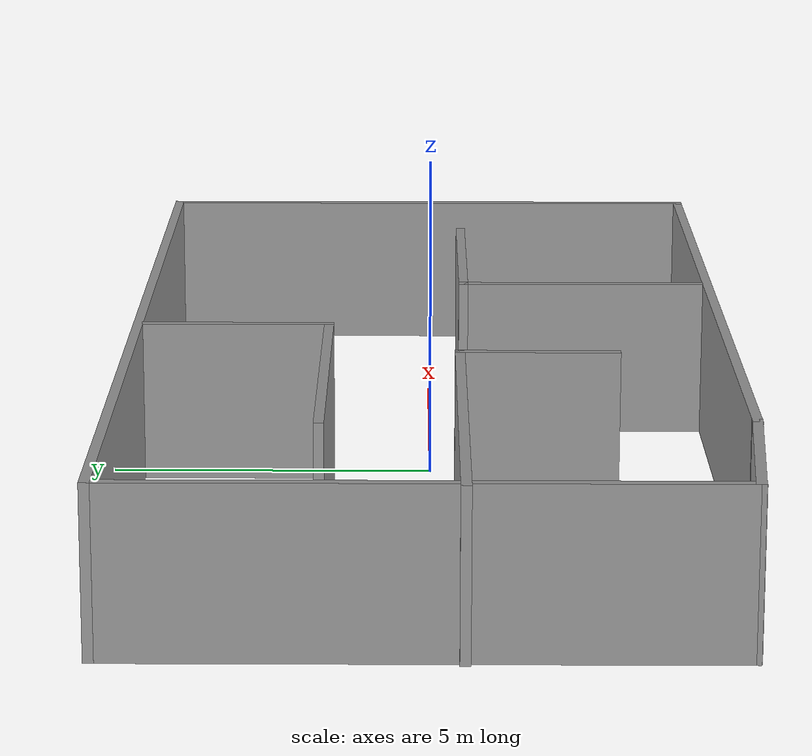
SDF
<?xml version='1.0'?>
<sdf version='1.7'>
  <model name='room'>
    <pose>-0.045393 0.01078 0 0 -0 0</pose>
    <link name='Wall_11'>
      <collision name='Wall_11_Collision'>
        <geometry>
          <box>
            <size>7 0.15 2.5</size>
          </box>
        </geometry>
        <pose>0 0 1.25 0 -0 0</pose>
      </collision>
      <visual name='Wall_11_Visual'>
        <pose>0 0 1.25 0 -0 0</pose>
        <geometry>
          <box>
            <size>7 0.15 2.5</size>
          </box>
        </geometry>
        <material>
          <script>
            <uri>file://media/materials/scripts/gazebo.material</uri>
            <name>Gazebo/Grey</name>
          </script>
          <ambient>1 1 1 1</ambient>
        </material>
        <meta>
          <layer>0</layer>
        </meta>
      </visual>
      <pose>-5.41155 -0.44524 0 0 -0 0</pose>
    </link>
    <link name='Wall_12'>
      <collision name='Wall_12_Collision'>
        <geometry>
          <box>
            <size>2.5 0.15 2.5</size>
          </box>
        </geometry>
        <pose>0 0 1.25 0 -0 0</pose>
      </collision>
      <visual name='Wall_12_Visual'>
        <pose>0 0 1.25 0 -0 0</pose>
        <geometry>
          <box>
            <size>2.5 0.15 2.5</size>
          </box>
        </geometry>
        <material>
          <script>
            <uri>file://media/materials/scripts/gazebo.material</uri>
            <name>Gazebo/Grey</name>
          </script>
          <ambient>1 1 1 1</ambient>
        </material>
        <meta>
          <layer>0</layer>
        </meta>
      </visual>
      <pose>-1.98655 -1.62024 0 0 -0 -1.5708</pose>
    </link>
    <link name='Wall_14'>
      <collision name='Wall_14_Collision'>
        <geometry>
          <box>
            <size>3 0.15 2.5</size>
          </box>
        </geometry>
        <pose>0 0 1.25 0 -0 0</pose>
      </collision>
      <visual name='Wall_14_Visual'>
        <pose>0 0 1.25 0 -0 0</pose>
        <geometry>
          <box>
            <size>3 0.15 2.5</size>
          </box>
        </geometry>
        <material>
          <script>
            <uri>file://media/materials/scripts/gazebo.material</uri>
            <name>Gazebo/Grey</name>
          </script>
          <ambient>1 1 1 1</ambient>
        </material>
        <meta>
          <layer>0</layer>
        </meta>
      </visual>
      <pose>-0.276152 2.99849 0 0 -0 -1.5708</pose>
    </link>
    <link name='Wall_15'>
      <collision name='Wall_15_Collision'>
        <geometry>
          <box>
            <size>5.75 0.15 2.5</size>
          </box>
        </geometry>
        <pose>0 0 1.25 0 -0 0</pose>
      </collision>
      <visual name='Wall_15_Visual'>
        <pose>0 0 1.25 0 -0 0</pose>
        <geometry>
          <box>
            <size>5.75 0.15 2.5</size>
          </box>
        </geometry>
        <material>
          <script>
            <uri>file://media/materials/scripts/gazebo.material</uri>
            <name>Gazebo/Grey</name>
          </script>
          <ambient>1 1 1 1</ambient>
        </material>
        <meta>
          <layer>0</layer>
        </meta>
      </visual>
      <pose>-3.07615 1.57349 0 0 -0 3.14159</pose>
    </link>
    <link name='Wall_17'>
      <collision name='Wall_17_Collision'>
        <geometry>
          <box>
            <size>4 0.15 2.5</size>
          </box>
        </geometry>
        <pose>0 0 1.25 0 -0 0</pose>
      </collision>
      <visual name='Wall_17_Visual'>
        <pose>0 0 1.25 0 -0 0</pose>
        <geometry>
          <box>
            <size>4 0.15 2.5</size>
          </box>
        </geometry>
        <material>
          <script>
            <uri>file://media/materials/scripts/gazebo.material</uri>
            <name>Gazebo/Grey</name>
          </script>
          <ambient>1 1 1 1</ambient>
        </material>
        <meta>
          <layer>0</layer>
        </meta>
      </visual>
      <pose>2.45248 -2.47942 0 0 -0 1.5708</pose>
    </link>
    <link name='Wall_18'>
      <collision name='Wall_18_Collision'>
        <geometry>
          <box>
            <size>4.25 0.15 2.5</size>
          </box>
        </geometry>
        <pose>0 0 1.25 0 -0 0</pose>
      </collision>
      <visual name='Wall_18_Visual'>
        <pose>0 0 1.25 0 -0 0</pose>
        <geometry>
          <box>
            <size>4.25 0.15 2.5</size>
          </box>
        </geometry>
        <material>
          <script>
            <uri>file://media/materials/scripts/gazebo.material</uri>
            <name>Gazebo/Grey</name>
          </script>
          <ambient>1 1 1 1</ambient>
        </material>
        <meta>
          <layer>0</layer>
        </meta>
      </visual>
      <pose>4.50247 -0.554425 0 0 -0 0</pose>
    </link>
    <link name='Wall_4'>
      <collision name='Wall_4_Collision'>
        <geometry>
          <box>
            <size>14.75 0.15 2.5</size>
          </box>
        </geometry>
        <pose>0 0 1.25 0 -0 0</pose>
      </collision>
      <visual name='Wall_4_Visual'>
        <pose>0 0 1.25 0 -0 0</pose>
        <geometry>
          <box>
            <size>14.75 0.15 2.5</size>
          </box>
        </geometry>
        <material>
          <script>
            <uri>file://media/materials/scripts/gazebo.material</uri>
            <name>Gazebo/Grey</name>
          </script>
          <ambient>1 1 1 1</ambient>
        </material>
        <meta>
          <layer>0</layer>
        </meta>
      </visual>
      <pose>1.53655 -4.54702 0 0 -0 0</pose>
    </link>
    <link name='Wall_5'>
      <collision name='Wall_5_Collision'>
        <geometry>
          <box>
            <size>9.25 0.15 2.5</size>
          </box>
        </geometry>
        <pose>0 0 1.25 0 -0 0</pose>
      </collision>
      <visual name='Wall_5_Visual'>
        <pose>0 0 1.25 0 -0 0</pose>
        <geometry>
          <box>
            <size>9.25 0.15 2.5</size>
          </box>
        </geometry>
        <material>
          <script>
            <uri>file://media/materials/scripts/gazebo.material</uri>
            <name>Gazebo/Grey</name>
          </script>
          <ambient>1 1 1 1</ambient>
        </material>
        <meta>
          <layer>0</layer>
        </meta>
      </visual>
      <pose>8.83655 0.002985 0 0 -0 1.5708</pose>
    </link>
    <link name='Wall_6'>
      <collision name='Wall_6_Collision'>
        <geometry>
          <box>
            <size>17.75 0.15 2.5</size>
          </box>
        </geometry>
        <pose>0 0 1.25 0 -0 0</pose>
      </collision>
      <visual name='Wall_6_Visual'>
        <pose>0 0 1.25 0 -0 0</pose>
        <geometry>
          <box>
            <size>17.75 0.15 2.5</size>
          </box>
        </geometry>
        <material>
          <script>
            <uri>file://media/materials/scripts/gazebo.material</uri>
            <name>Gazebo/Grey</name>
          </script>
          <ambient>1 1 1 1</ambient>
        </material>
        <meta>
          <layer>0</layer>
        </meta>
      </visual>
      <pose>0.036551 4.55298 0 0 -0 3.14159</pose>
    </link>
    <link name='Wall_7'>
      <collision name='Wall_7_Collision'>
        <geometry>
          <box>
            <size>9 0.15 2.5</size>
          </box>
        </geometry>
        <pose>0 0 1.25 0 -0 0</pose>
      </collision>
      <visual name='Wall_7_Visual'>
        <pose>0 0 1.25 0 -0 0</pose>
        <geometry>
          <box>
            <size>9 0.15 2.5</size>
          </box>
        </geometry>
        <material>
          <script>
            <uri>file://media/materials/scripts/gazebo.material</uri>
            <name>Gazebo/Grey</name>
          </script>
          <ambient>1 1 1 1</ambient>
        </material>
        <meta>
          <layer>0</layer>
        </meta>
      </visual>
      <pose>-8.76345 0.127985 0 0 -0 -1.5708</pose>
    </link>
    <link name='Wall_8'>
      <collision name='Wall_8_Collision'>
        <geometry>
          <box>
            <size>3.1604 0.15 2.5</size>
          </box>
        </geometry>
        <pose>0 0 1.25 0 -0 0</pose>
      </collision>
      <visual name='Wall_8_Visual'>
        <pose>0 0 1.25 0 -0 0</pose>
        <geometry>
          <box>
            <size>3.1604 0.15 2.5</size>
          </box>
        </geometry>
        <material>
          <script>
            <uri>file://media/materials/scripts/gazebo.material</uri>
            <name>Gazebo/Grey</name>
          </script>
          <ambient>1 1 1 1</ambient>
        </material>
        <meta>
          <layer>0</layer>
        </meta>
      </visual>
      <pose>-7.26345 -4.42202 0 0 -0 -0.083141</pose>
    </link>
    <link name='Wall_9'>
      <collision name='Wall_9_Collision'>
        <geometry>
          <box>
            <size>0.15 0.15 2.5</size>
          </box>
        </geometry>
        <pose>0 0 1.25 0 -0 0</pose>
      </collision>
      <visual name='Wall_9_Visual'>
        <pose>0 0 1.25 0 -0 0</pose>
        <geometry>
          <box>
            <size>0.15 0.15 2.5</size>
          </box>
        </geometry>
        <material>
          <script>
            <uri>file://media/materials/scripts/gazebo.material</uri>
            <name>Gazebo/Grey</name>
          </script>
          <ambient>1 1 1 1</ambient>
        </material>
        <meta>
          <layer>0</layer>
        </meta>
      </visual>
      <pose>-5.76345 -4.54702 0 0 -0 0</pose>
    </link>
    <static>1</static>
  </model>
</sdf>
